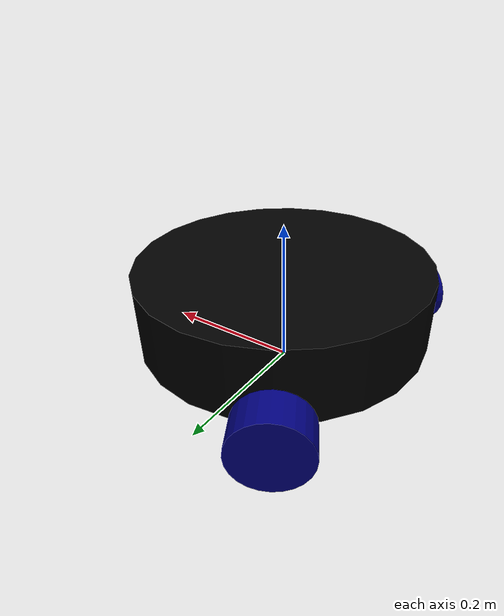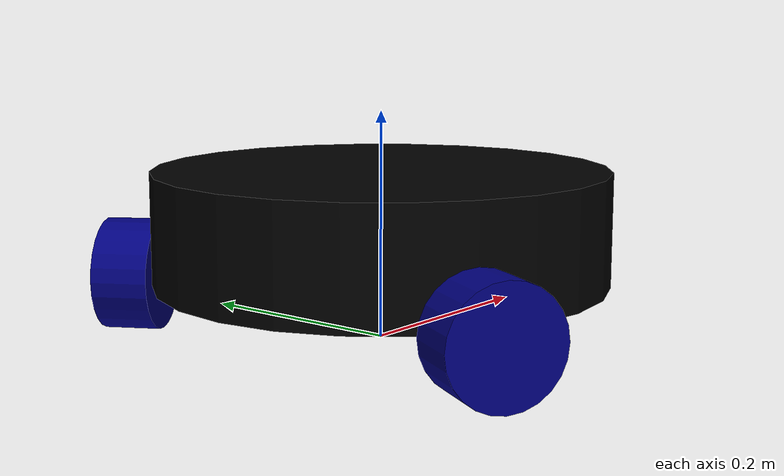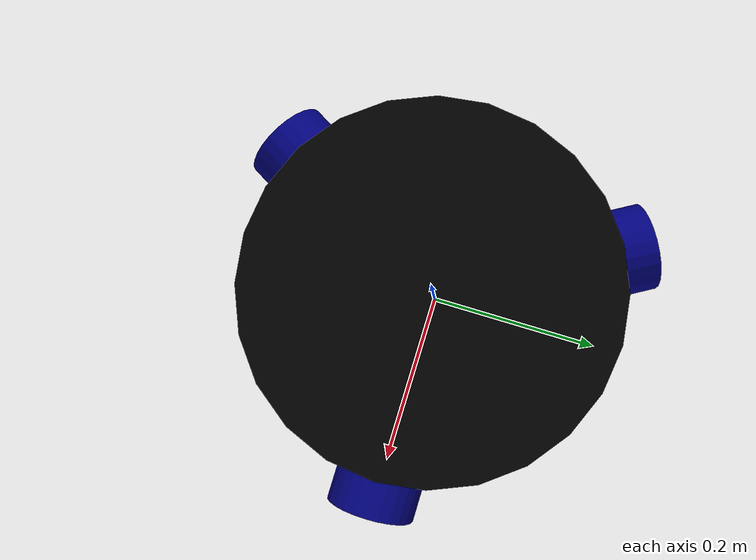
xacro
<?xml version="1.0"?>

<robot name="omnibot" xmlns:xacro="http://ros.org/wiki/xacro">
    <xacro:include filename="$(find omnibot_description)/urdf/common_properties.xacro" />
    <xacro:include filename="$(find omnibot_description)/urdf/mech/omnibot_base.xacro" />
    <xacro:include filename="$(find omnibot_description)/urdf/mech/omnibot_wheel.xacro" />
    <xacro:include filename="$(find omnibot_description)/urdf/omnibot_ros2_control.xacro" />
    <xacro:include filename="$(find omnibot_description)/urdf/omnibot_gazebo.xacro" />
</robot>

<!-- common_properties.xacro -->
<robot xmlns:xacro="http://www.ros.org/wiki/xacro">

    <material name="blue">
        <color rgba="0 0 0.5 1" />
    </material>

    <material name="grey">
        <color rgba="0.5 0.5 0.5 1" />
    </material>

    <material name="orange">
        <color rgba="1.0 0.5 0 1" />
    </material>

    <material name="yellow">
        <color rgba="1.0 1.0 0 1" />
    </material>
    <material name="black">
        <color rgba="0 0 0 1" />
    </material>

    <xacro:macro name="box_inertia" params="m x y z o_xyz o_rpy">
        <inertial>
            <mass value="${m}" />
            <origin xyz="${o_xyz}" rpy="${o_rpy}" />
            <inertia ixx="${(m/12) * (y*y + z*z)}" ixy="0" ixz="0"
                     iyy="${(m/12) * (x*x + z*z)}" iyz="0"
                     izz="${(m/12) * (x*x + y*y)}" />
        </inertial>
    </xacro:macro>

    <xacro:macro name="cylinder_inertia" params="m r l o_xyz o_rpy">
        <inertial>
            <mass value="${m}" />
            <origin xyz="${o_xyz}" rpy="${o_rpy}" />
            <inertia ixx="${(m/12) * (3*r*r + l*l)}" ixy="0" ixz="0"
                     iyy="${(m/12) * (3*r*r + l*l)}" iyz="0"
                     izz="${(m/2) * (r*r)}" />
        </inertial>
    </xacro:macro>

    <xacro:macro name="sphere_inertia" params="m r o_xyz o_rpy">
        <inertial>
            <mass value="${m}" />
            <origin xyz="${o_xyz}" rpy="${o_rpy}" />
            <inertia ixx="${(2/5) * m * r * r}" ixy="0" ixz="0"
                     iyy="${(2/5) * m * r * r}" iyz="0"
                     izz="${(2/5) * m * r * r}" />
        </inertial>
    </xacro:macro>

</robot>

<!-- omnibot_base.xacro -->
<robot  xmlns:xacro="http://ros.org/wiki/xacro">

    <xacro:property name="base_radius" value="0.2"/>
    <xacro:property name="base_hight" value="0.1"/>
    <xacro:property name="wheel_radius" value="0.05"/>
    <xacro:property name="wheel_length" value="0.05"/>

    <link name="base_footprint"/>
    <link name="base_link">
        <visual>
            <origin xyz="0 0 ${wheel_radius}" rpy="0 0 0"/>
            <geometry>
                <cylinder radius="${base_radius}" length="${base_hight}" />
            </geometry>
            <material name="black"/>
        </visual>
        <collision>
                <geometry>
                    <cylinder radius="${base_radius}" length="${base_hight}" />
                </geometry>
                <origin xyz="0 0 ${wheel_radius}" rpy="0 0 0" />
            </collision>
            <xacro:cylinder_inertia m="10.0" r="${base_radius}" l="${base_hight}"
                                    o_xyz="0 0 ${wheel_radius}" o_rpy="0 0 0" />
    </link>

    <joint name="base_joint" type="fixed">
        <parent link="base_footprint"/>
        <child link="base_link"/>
        <origin xyz="0 0 ${wheel_radius}" rpy="0 0 0"/>
    </joint>

</robot>

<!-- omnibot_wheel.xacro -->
<robot  xmlns:xacro="http://ros.org/wiki/xacro">

    <xacro:macro name="wheel_link" params="num">
        <link name="wheel_link_${num}">
            <visual>
                <geometry>
                    <cylinder radius="${wheel_radius}" length="${wheel_length}" />
                </geometry>
                <origin xyz="0 0 0" rpy="${pi / 2.0} 0 0" />
                <material name="blue"/>
            </visual>
            <collision>
                <geometry>
                    <sphere radius="${wheel_radius}" />
                </geometry>
                <origin xyz="0 0 0" rpy="0 0 0" />
            </collision>
            <collision>
                <geometry>
                    <sphere radius="${wheel_radius}" />
                </geometry>
                <origin xyz="0 0 0" rpy="${pi / 2.0} 0 0" />
            </collision>
            <xacro:cylinder_inertia m="0.50" r="${wheel_radius}" l="${wheel_length}"
                                    o_xyz="0 0 0" o_rpy="${pi / 2.0} 0 0" />

        </link>
        <joint name="wheel_joint${num}" type="continuous">
            <parent link="base_link" />
            <child link="wheel_link_${num}" />
            <origin
                xyz="${(base_radius+wheel_length/2)*cos(num*pi*2/3)} ${(base_radius+wheel_length/2)*sin(num*pi*2/3)} 0"
                rpy="0 0 ${(num*pi*2/3)+pi/2}" />
            <axis xyz="0 1 0" />
        </joint>

    </xacro:macro>
    <xacro:wheel_link num="0" />
    <xacro:wheel_link num="1" />
    <xacro:wheel_link num="2"/>

</robot>
